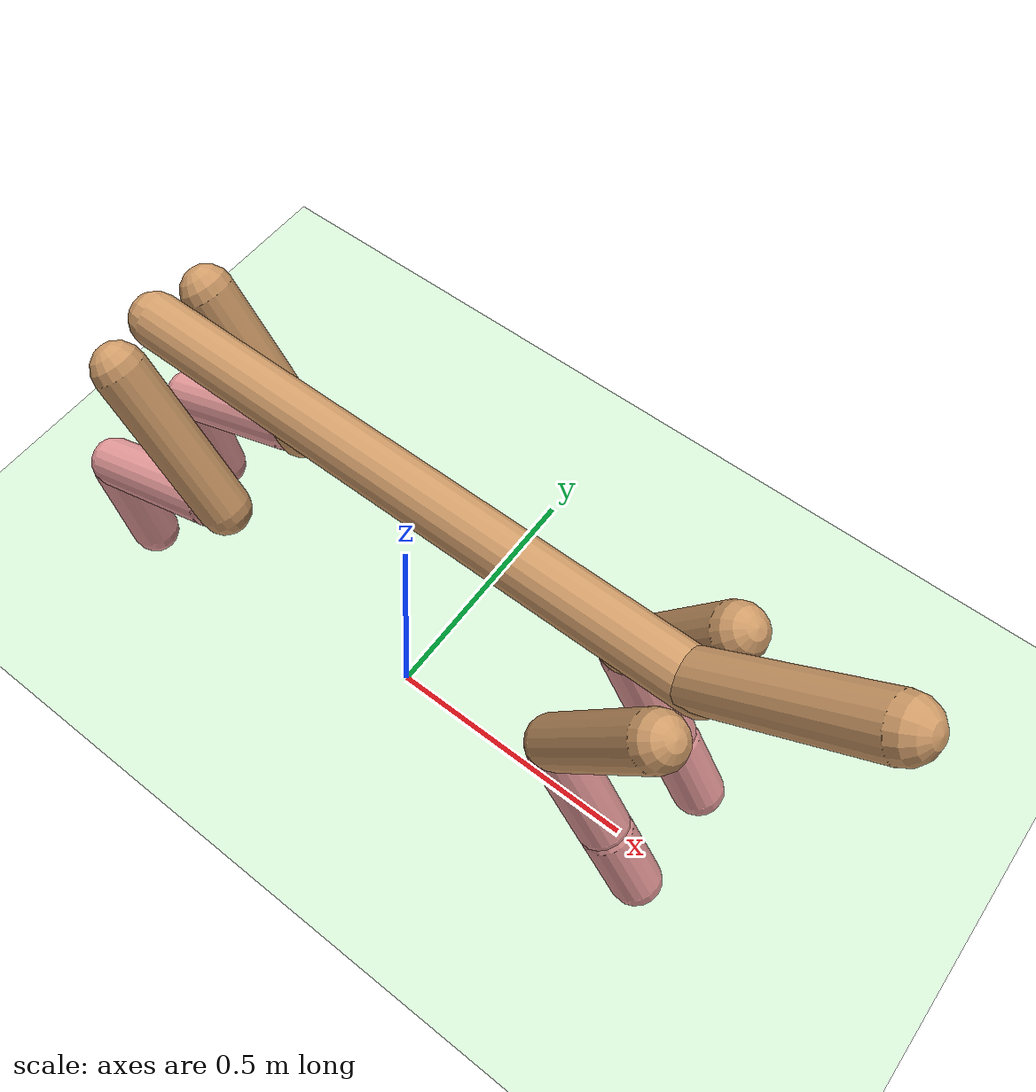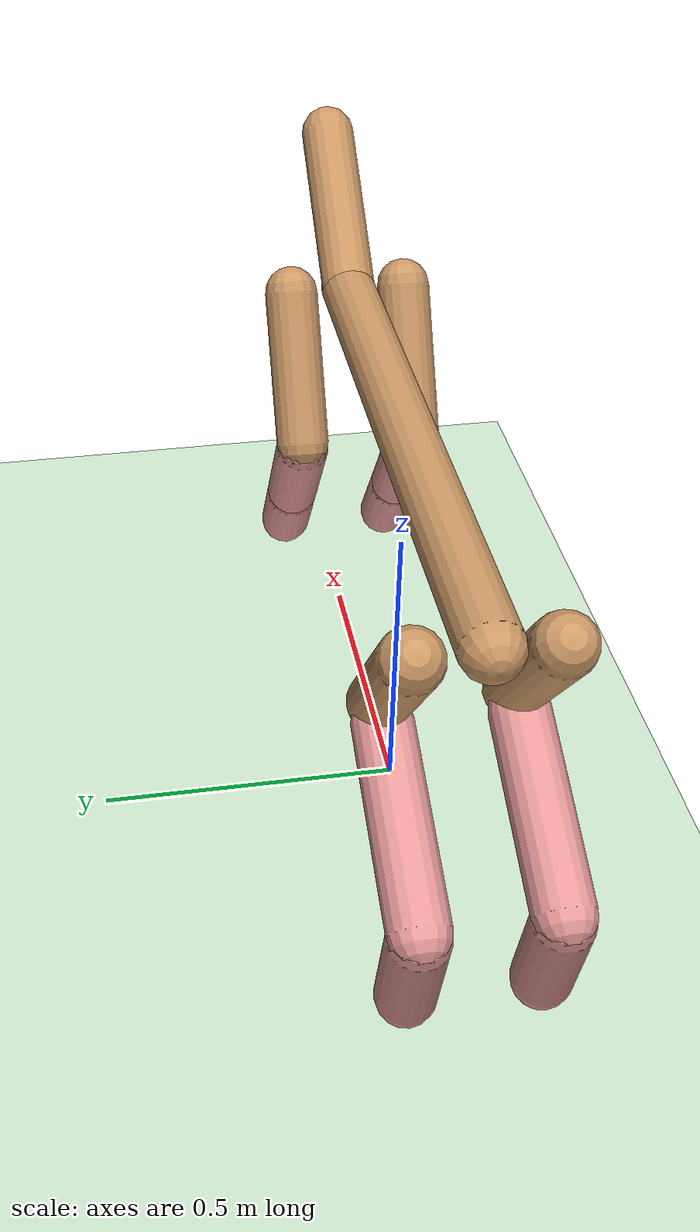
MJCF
<mujoco model="cheetah">
  <compiler angle="radian" coordinate="local" inertiafromgeom="true" settotalmass="14"/>
  <default>
    <joint armature=".1" damping=".01" limited="true" solimplimit="0 .8 .03" solreflimit=".02 1" stiffness="8"/>
    <geom conaffinity="0" condim="3" contype="1" friction=".4 .1 .1" rgba="0.8 0.6 .4 1" solimp="0.0 0.8 0.01" solref="0.02 1"/>
    <motor ctrllimited="true" ctrlrange="-1 1"/>
  </default>
  <size nstack="300000" nuser_geom="1"/>
  <option gravity="0 0 -9.81" timestep="0.01"/>
  <asset>
    <texture builtin="gradient" height="100" rgb1="1 1 1" rgb2="0 0 0" type="skybox" width="100"/>
    <texture builtin="flat" height="1278" mark="cross" markrgb="1 1 1" name="texgeom" random="0.01" rgb1="0.8 0.6 0.4" rgb2="0.8 0.6 0.4" type="cube" width="127"/>
    <texture builtin="checker" height="100" name="texplane" rgb1="0 0 0" rgb2="0.8 0.8 0.8" type="2d" width="100"/>
    <material name="MatPlane" reflectance="0.5" shininess="1" specular="1" texrepeat="60 60" texture="texplane"/>
    <material name="geom" texture="texgeom" texuniform="true"/>
  </asset>
  <worldbody>
    <light cutoff="100" diffuse="1 1 1" dir="-0 0 -1.3" directional="true" exponent="1" pos="0 0 1.3" specular=".1 .1 .1"/>
    <geom conaffinity="1" condim="3" material="MatPlane" name="floor" pos="0 0 0" rgba="0.8 0.9 0.8 1" size="40 40 40" type="plane"/>
    <body name="torso" pos="0 0 .7">
      <camera name="track" mode="trackcom" pos="0 -3 0.3" xyaxes="1 0 0 0 0 1"/>
      <joint armature="0" axis="1 0 0" damping="0" limited="false" name="rootx" pos="0 0 0" stiffness="0" type="slide"/>
      <joint armature="0" axis="0 0 1" damping="0" limited="false" name="rootz" pos="0 0 0" stiffness="0" type="slide"/>
      <joint armature="0" axis="0 1 0" damping="0" limited="false" name="rooty" pos="0 0 0" stiffness="0" type="hinge"/>
      <geom fromto="-.5 0 0 .5 0 0" name="torso" size="0.046" type="capsule"/>
      <geom axisangle="0 1 0 .87" name="head" pos=".6 0 .1" size="0.046 .15" type="capsule"/>

      <!-- Left front leg -->
      <body name="lfthigh" pos=".5 0.1 0">
        <joint axis="0 1 0" damping="4.5" name="lfthigh" pos="0 0 0" range="-1 .7" stiffness="180" type="hinge"/>
        <geom axisangle="0 1 0 .52" name="lfthigh" pos="-.07 0 -.12" size="0.046 .133" type="capsule"/>
        <body name="lfshin" pos="-.14 0 -.24">
          <joint axis="0 1 0" damping="3" name="lfshin" pos="0 0 0" range="-1.2 .87" stiffness="120" type="hinge"/>
          <geom axisangle="0 1 0 -.6" name="lfshin" pos=".065 0 -.09" rgba="0.9 0.6 0.6 1" size="0.046 .106" type="capsule"/>
          <body name="lffoot" pos=".13 0 -.18">
            <joint axis="0 1 0" damping="1.5" name="lffoot" pos="0 0 0" range="-.5 .5" stiffness="60" type="hinge"/>
            <geom axisangle="0 1 0 -.6" name="lffoot" pos=".045 0 -.07" rgba="0.9 0.6 0.6 1" size="0.046 .07" type="capsule"/>
          </body>
        </body>
      </body>

      <!-- Right front leg -->
      <body name="rfthigh" pos=".5 -0.1 0">
        <joint axis="0 1 0" damping="4.5" name="rfthigh" pos="0 0 0" range="-1 .7" stiffness="180" type="hinge"/>
        <geom axisangle="0 1 0 .52" name="rfthigh" pos="-.07 0 -.12" size="0.046 .133" type="capsule"/>
        <body name="rfshin" pos="-.14 0 -.24">
          <joint axis="0 1 0" damping="3" name="rfshin" pos="0 0 0" range="-1.2 .87" stiffness="120" type="hinge"/>
          <geom axisangle="0 1 0 -.6" name="rfshin" pos=".065 0 -.09" rgba="0.9 0.6 0.6 1" size="0.046 .106" type="capsule"/>
          <body name="rffoot" pos=".13 0 -.18">
            <joint axis="0 1 0" damping="1.5" name="rffoot" pos="0 0 0" range="-.5 .5" stiffness="60" type="hinge"/>
            <geom axisangle="0 1 0 -.6" name="rffoot" pos=".045 0 -.07" rgba="0.9 0.6 0.6 1" size="0.046 .07" type="capsule"/>
          </body>
        </body>
      </body>

      <!-- Left back leg -->
      <body name="lbthigh" pos="-.5 0.1 0">
        <joint axis="0 1 0" damping="6" name="lbthigh" pos="0 0 0" range="-.52 1.05" stiffness="240" type="hinge"/>
        <geom axisangle="0 1 0 -3.8" name="lbthigh" pos=".1 0 -.13" size="0.046 .145" type="capsule"/>
        <body name="lbshin" pos=".16 0 -.25">
          <joint axis="0 1 0" damping="4.5" name="lbshin" pos="0 0 0" range="-.785 .785" stiffness="180" type="hinge"/>
          <geom axisangle="0 1 0 -2.03" name="lbshin" pos="-.14 0 -.07" rgba="0.9 0.6 0.6 1" size="0.046 .15" type="capsule"/>
          <body name="lbfoot" pos="-.28 0 -.14">
            <joint axis="0 1 0" damping="3" name="lbfoot" pos="0 0 0" range="-.4 .785" stiffness="120" type="hinge"/>
            <geom axisangle="0 1 0 -.27" name="lbfoot" pos=".03 0 -.097" rgba="0.9 0.6 0.6 1" size="0.046 .094" type="capsule"/>
          </body>
        </body>
      </body>

      <!-- Right back leg -->
      <body name="rbthigh" pos="-.5 -0.1 0">
        <joint axis="0 1 0" damping="6" name="rbthigh" pos="0 0 0" range="-.52 1.05" stiffness="240" type="hinge"/>
        <geom axisangle="0 1 0 -3.8" name="rbthigh" pos=".1 0 -.13" size="0.046 .145" type="capsule"/>
        <body name="rbshin" pos=".16 0 -.25">
          <joint axis="0 1 0" damping="4.5" name="rbshin" pos="0 0 0" range="-.785 .785" stiffness="180" type="hinge"/>
          <geom axisangle="0 1 0 -2.03" name="rbshin" pos="-.14 0 -.07" rgba="0.9 0.6 0.6 1" size="0.046 .15" type="capsule"/>
          <body name="rbfoot" pos="-.28 0 -.14">
            <joint axis="0 1 0" damping="3" name="rbfoot" pos="0 0 0" range="-.4 .785" stiffness="120" type="hinge"/>
            <geom axisangle="0 1 0 -.27" name="rbfoot" pos=".03 0 -.097" rgba="0.9 0.6 0.6 1" size="0.046 .094" type="capsule"/>
          </body>
        </body>
      </body>
    </body>

    <!-- Cable anchor sites -->
    <site name="cable_start" pos="0.5 0 0.7" size="0.01"/>
    <site name="cable_mid1" pos="0.25 0 0.7" size="0.01"/>
    <site name="cable_mid2" pos="0 0 0.7" size="0.01"/>
    <site name="cable_mid3" pos="-0.25 0 0.7" size="0.01"/>
    <site name="cable_end" pos="-0.5 0 0.7" size="0.01"/>
  </worldbody>

  <tendon>
    <cable name="torso_cable" range="0 2">
      <site site="cable_start"/>
      <site site="cable_mid1"/>
      <site site="cable_mid2"/>
      <site site="cable_mid3"/>
      <site site="cable_end"/>
    </cable>
  </tendon>

  <actuator>
    <!-- Leg actuators -->
    <motor gear="120" joint="lfthigh" name="lfthigh"/>
    <motor gear="60" joint="lfshin" name="lfshin"/>
    <motor gear="30" joint="lffoot" name="lffoot"/>
    <motor gear="120" joint="rfthigh" name="rfthigh"/>
    <motor gear="60" joint="rfshin" name="rfshin"/>
    <motor gear="30" joint="rffoot" name="rffoot"/>
    <motor gear="120" joint="lbthigh" name="lbthigh"/>
    <motor gear="90" joint="lbshin" name="lbshin"/>
    <motor gear="60" joint="lbfoot" name="lbfoot"/>
    <motor gear="120" joint="rbthigh" name="rbthigh"/>
    <motor gear="90" joint="rbshin" name="rbshin"/>
    <motor gear="60" joint="rbfoot" name="rbfoot"/>

    <!-- Cable actuator -->
    <general dyntype="cable" dynprm="1 0 0 0 0" ctrllimited="true" ctrlrange="-1 1" gear="1" tendon="torso_cable" name="torso_cable_motor"/>
  </actuator>
</mujoco>
